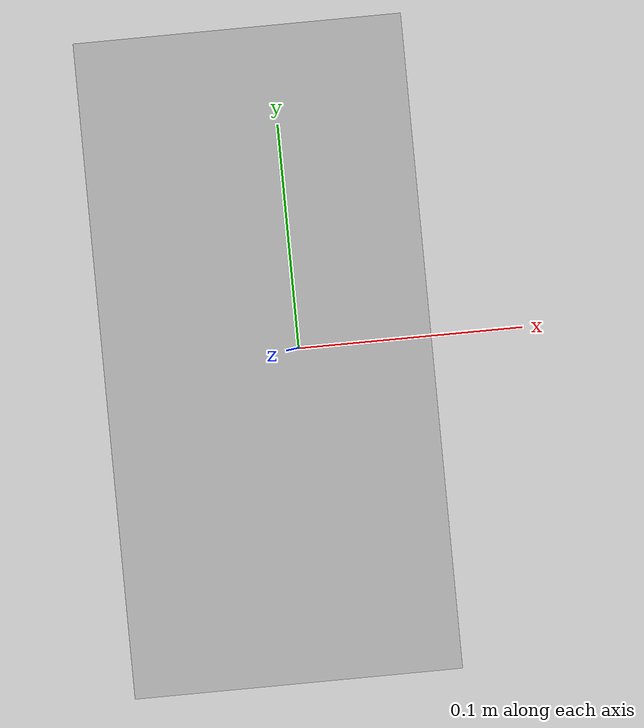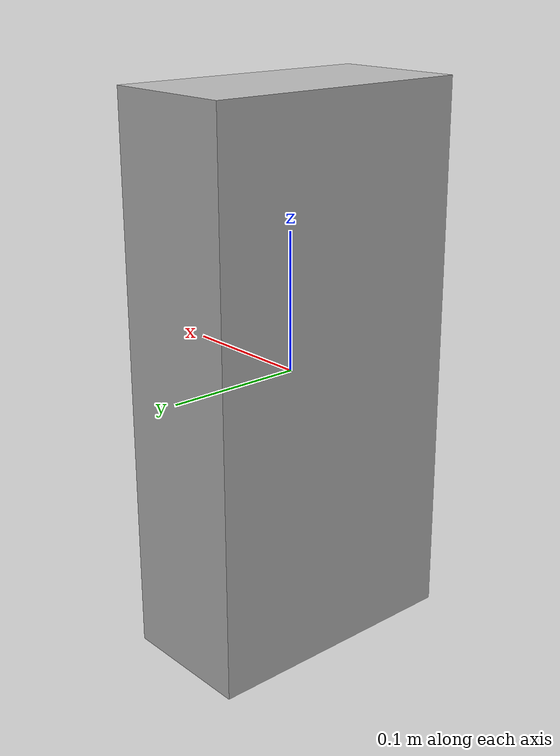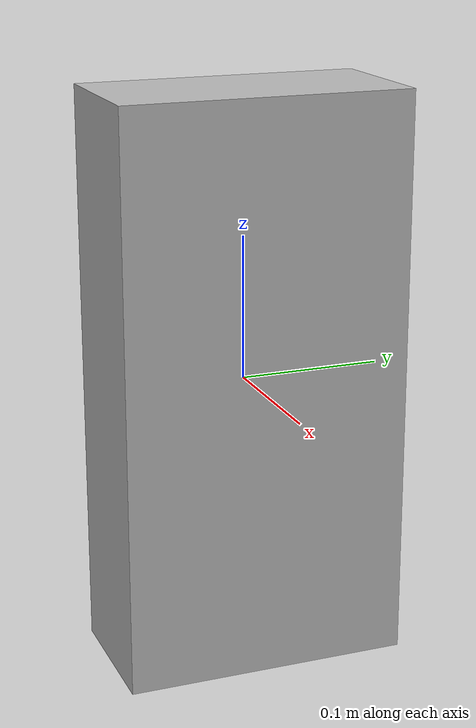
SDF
<?xml version='1.0' encoding='utf-8'?>
<sdf version="1.7">
  <model name="pose_joint_in_frame">
    <frame name="some_frame">
      <pose>0.05 0.1 0.2 0.1 0.2 0.3</pose>
    </frame>
    <link name="link_1">
      <visual name="link_1_visual">
        <geometry>
          <box>
            <size>0.1 0.2 0.4</size>
          </box>
        </geometry>
      </visual>
      <collision name="link_1_collision">
        <geometry>
          <box>
            <size>0.1 0.2 0.4</size>
          </box>
        </geometry>
      </collision>
      <inertial>
        <mass>1.23</mass>
        <inertia>
          <ixx>0.0205</ixx>
          <ixy>0</ixy>
          <ixz>0</ixz>
          <iyy>0.017425</iyy>
          <iyz>0</iyz>
          <izz>0.005125</izz>
        </inertia>
      </inertial>
    </link>
    <link name="link_2">
      <visual name="link_2_visual">
        <geometry>
          <box>
            <size>0.1 0.2 0.4</size>
          </box>
        </geometry>
      </visual>
      <collision name="link_2_collision">
        <geometry>
          <box>
            <size>0.1 0.2 0.4</size>
          </box>
        </geometry>
      </collision>
      <inertial>
        <mass>1.23</mass>
        <inertia>
          <ixx>0.0205</ixx>
          <ixy>0</ixy>
          <ixz>0</ixz>
          <iyy>0.017425</iyy>
          <iyz>0</iyz>
          <izz>0.005125</izz>
        </inertia>
      </inertial>
    </link>
    <joint name="joint_with_pose" type="revolute">
      <pose relative_to="some_frame">0.05 0.1 0.2 0.1 0.2 0.3</pose>
      <parent>link_1</parent>
      <child>link_2</child>
      <axis>
        <xyz>1 0 0</xyz>
        <limit>
          <lower>-1.5</lower>
          <upper>1.5</upper>
        </limit>
      </axis>
    </joint>
  </model>
</sdf>
